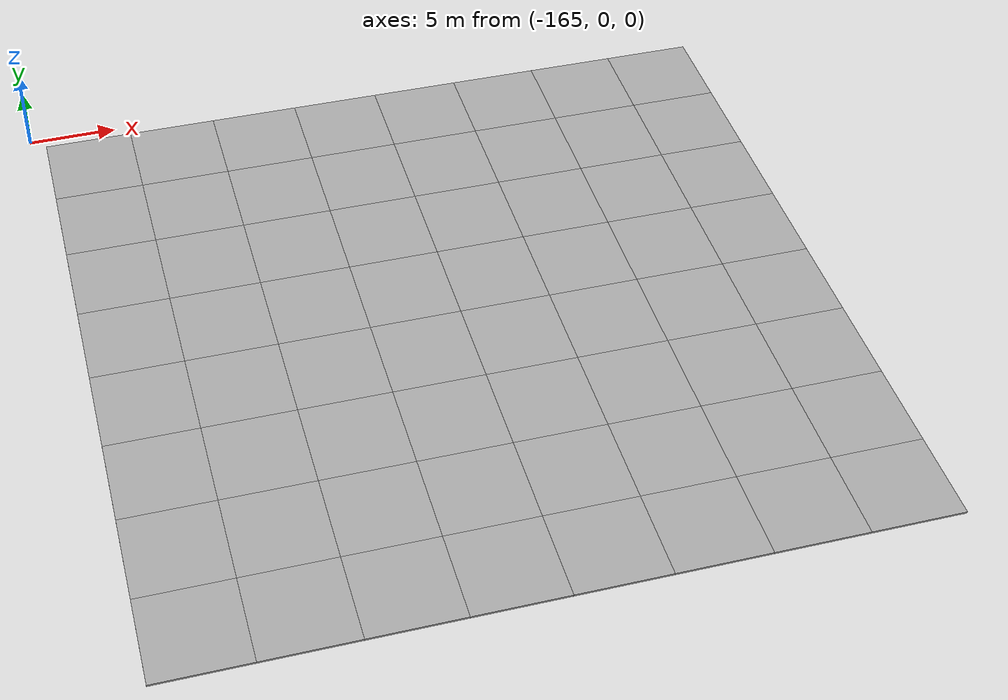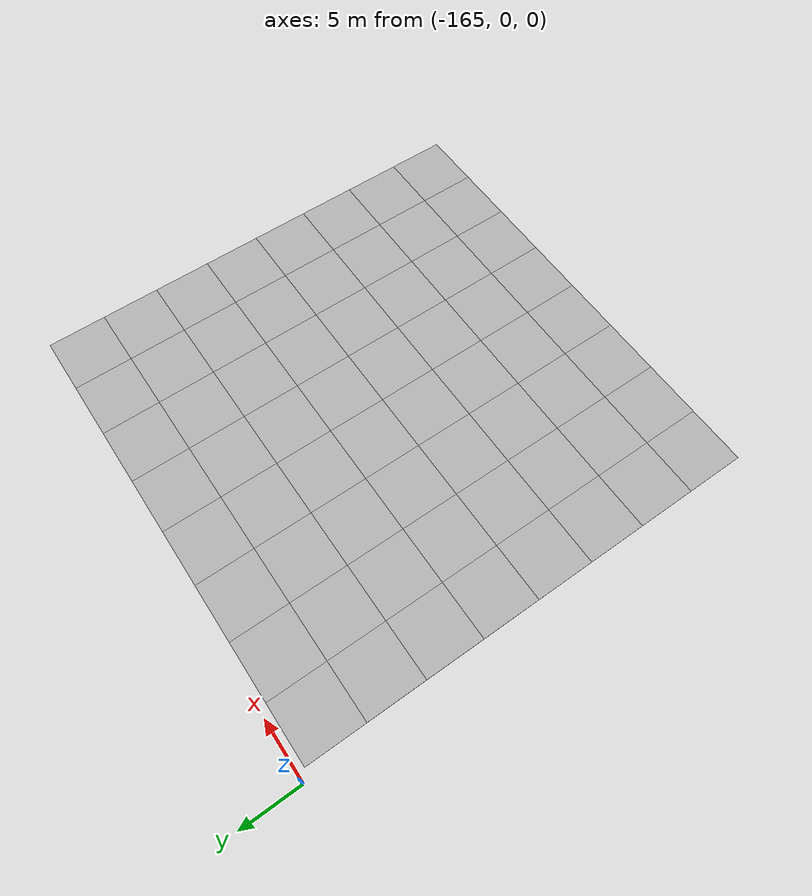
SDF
<sdf version="1.7">
 <world name="default">
  <model name="mud_plane_80x80_4">
   <model name="mud_plane_40x40_1">
    <model name="mud_plane_20x20">
     <model name="mud_plane">
      <static>1</static>
      <link name="link">
       <collision name="collision"><geometry><box><size>10 10 0.1</size></box></geometry></collision>
       <visual name="visual_1">
        <pose>-2.5 2.5 -0.05 0 -0 0</pose>
        <cast_shadows>0</cast_shadows>
        <geometry><box><size>5 5 0.1</size></box></geometry>
        <material>
         <script>
          <uri>model://mud_plane/materials/scripts</uri>
          <uri>model://mud_plane/materials/textures</uri>
          <name>vrc/mud</name>
         </script>
        </material>
       </visual>
       <visual name="visual_2">
        <pose>2.5 2.5 -0.05 0 -0 0</pose>
        <cast_shadows>0</cast_shadows>
        <geometry><box><size>5 5 0.1</size></box></geometry>
        <material>
         <script>
          <uri>model://mud_plane/materials/scripts</uri>
          <uri>model://mud_plane/materials/textures</uri>
          <name>vrc/mud</name>
         </script>
        </material>
       </visual>
       <visual name="visual_3">
        <pose>2.5 -2.5 -0.05 0 -0 0</pose>
        <cast_shadows>0</cast_shadows>
        <geometry><box><size>5 5 0.1</size></box></geometry>
        <material>
         <script>
          <uri>model://mud_plane/materials/scripts</uri>
          <uri>model://mud_plane/materials/textures</uri>
          <name>vrc/mud</name>
         </script>
        </material>
       </visual>
       <visual name="visual_4">
        <pose>-2.5 -2.5 -0.05 0 -0 0</pose>
        <cast_shadows>0</cast_shadows>
        <geometry><box><size>5 5 0.1</size></box></geometry>
        <material>
         <script>
          <uri>model://mud_plane/materials/scripts</uri>
          <uri>model://mud_plane/materials/textures</uri>
          <name>vrc/mud</name>
         </script>
        </material>
       </visual>
      </link>
      <pose>-4.99986 -4.99991 0 0 -0 0</pose>
     </model>
     <model name="mud_plane_0">
      <static>1</static>
      <link name="link">
       <collision name="collision"><geometry><box><size>10 10 0.1</size></box></geometry></collision>
       <visual name="visual_1">
        <pose>-2.5 2.5 -0.05 0 -0 0</pose>
        <cast_shadows>0</cast_shadows>
        <geometry><box><size>5 5 0.1</size></box></geometry>
        <material>
         <script>
          <uri>model://mud_plane/materials/scripts</uri>
          <uri>model://mud_plane/materials/textures</uri>
          <name>vrc/mud</name>
         </script>
        </material>
       </visual>
       <visual name="visual_2">
        <pose>2.5 2.5 -0.05 0 -0 0</pose>
        <cast_shadows>0</cast_shadows>
        <geometry><box><size>5 5 0.1</size></box></geometry>
        <material>
         <script>
          <uri>model://mud_plane/materials/scripts</uri>
          <uri>model://mud_plane/materials/textures</uri>
          <name>vrc/mud</name>
         </script>
        </material>
       </visual>
       <visual name="visual_3">
        <pose>2.5 -2.5 -0.05 0 -0 0</pose>
        <cast_shadows>0</cast_shadows>
        <geometry><box><size>5 5 0.1</size></box></geometry>
        <material>
         <script>
          <uri>model://mud_plane/materials/scripts</uri>
          <uri>model://mud_plane/materials/textures</uri>
          <name>vrc/mud</name>
         </script>
        </material>
       </visual>
       <visual name="visual_4">
        <pose>-2.5 -2.5 -0.05 0 -0 0</pose>
        <cast_shadows>0</cast_shadows>
        <geometry><box><size>5 5 0.1</size></box></geometry>
        <material>
         <script>
          <uri>model://mud_plane/materials/scripts</uri>
          <uri>model://mud_plane/materials/textures</uri>
          <name>vrc/mud</name>
         </script>
        </material>
       </visual>
      </link>
      <pose>-4.99946 4.99954 0 0 -0 0</pose>
     </model>
     <model name="mud_plane_1">
      <static>1</static>
      <link name="link">
       <collision name="collision"><geometry><box><size>10 10 0.1</size></box></geometry></collision>
       <visual name="visual_1">
        <pose>-2.5 2.5 -0.05 0 -0 0</pose>
        <cast_shadows>0</cast_shadows>
        <geometry><box><size>5 5 0.1</size></box></geometry>
        <material>
         <script>
          <uri>model://mud_plane/materials/scripts</uri>
          <uri>model://mud_plane/materials/textures</uri>
          <name>vrc/mud</name>
         </script>
        </material>
       </visual>
       <visual name="visual_2">
        <pose>2.5 2.5 -0.05 0 -0 0</pose>
        <cast_shadows>0</cast_shadows>
        <geometry><box><size>5 5 0.1</size></box></geometry>
        <material>
         <script>
          <uri>model://mud_plane/materials/scripts</uri>
          <uri>model://mud_plane/materials/textures</uri>
          <name>vrc/mud</name>
         </script>
        </material>
       </visual>
       <visual name="visual_3">
        <pose>2.5 -2.5 -0.05 0 -0 0</pose>
        <cast_shadows>0</cast_shadows>
        <geometry><box><size>5 5 0.1</size></box></geometry>
        <material>
         <script>
          <uri>model://mud_plane/materials/scripts</uri>
          <uri>model://mud_plane/materials/textures</uri>
          <name>vrc/mud</name>
         </script>
        </material>
       </visual>
       <visual name="visual_4">
        <pose>-2.5 -2.5 -0.05 0 -0 0</pose>
        <cast_shadows>0</cast_shadows>
        <geometry><box><size>5 5 0.1</size></box></geometry>
        <material>
         <script>
          <uri>model://mud_plane/materials/scripts</uri>
          <uri>model://mud_plane/materials/textures</uri>
          <name>vrc/mud</name>
         </script>
        </material>
       </visual>
      </link>
      <pose>4.99964 -4.99949 0 0 -0 0</pose>
     </model>
     <model name="mud_plane_2">
      <static>1</static>
      <link name="link">
       <collision name="collision"><geometry><box><size>10 10 0.1</size></box></geometry></collision>
       <visual name="visual_1">
        <pose>-2.5 2.5 -0.05 0 -0 0</pose>
        <cast_shadows>0</cast_shadows>
        <geometry><box><size>5 5 0.1</size></box></geometry>
        <material>
         <script>
          <uri>model://mud_plane/materials/scripts</uri>
          <uri>model://mud_plane/materials/textures</uri>
          <name>vrc/mud</name>
         </script>
        </material>
       </visual>
       <visual name="visual_2">
        <pose>2.5 2.5 -0.05 0 -0 0</pose>
        <cast_shadows>0</cast_shadows>
        <geometry><box><size>5 5 0.1</size></box></geometry>
        <material>
         <script>
          <uri>model://mud_plane/materials/scripts</uri>
          <uri>model://mud_plane/materials/textures</uri>
          <name>vrc/mud</name>
         </script>
        </material>
       </visual>
       <visual name="visual_3">
        <pose>2.5 -2.5 -0.05 0 -0 0</pose>
        <cast_shadows>0</cast_shadows>
        <geometry><box><size>5 5 0.1</size></box></geometry>
        <material>
         <script>
          <uri>model://mud_plane/materials/scripts</uri>
          <uri>model://mud_plane/materials/textures</uri>
          <name>vrc/mud</name>
         </script>
        </material>
       </visual>
       <visual name="visual_4">
        <pose>-2.5 -2.5 -0.05 0 -0 0</pose>
        <cast_shadows>0</cast_shadows>
        <geometry><box><size>5 5 0.1</size></box></geometry>
        <material>
         <script>
          <uri>model://mud_plane/materials/scripts</uri>
          <uri>model://mud_plane/materials/textures</uri>
          <name>vrc/mud</name>
         </script>
        </material>
       </visual>
      </link>
      <pose>4.99967 4.99986 0 0 -0 0</pose>
     </model>
     <static>0</static>
     <pose>-9.99895 9.99843 0 0 -0 0</pose>
    </model>
    <model name="mud_plane_20x20_0">
     <model name="mud_plane">
      <static>1</static>
      <link name="link">
       <collision name="collision"><geometry><box><size>10 10 0.1</size></box></geometry></collision>
       <visual name="visual_1">
        <pose>-2.5 2.5 -0.05 0 -0 0</pose>
        <cast_shadows>0</cast_shadows>
        <geometry><box><size>5 5 0.1</size></box></geometry>
        <material>
         <script>
          <uri>model://mud_plane/materials/scripts</uri>
          <uri>model://mud_plane/materials/textures</uri>
          <name>vrc/mud</name>
         </script>
        </material>
       </visual>
       <visual name="visual_2">
        <pose>2.5 2.5 -0.05 0 -0 0</pose>
        <cast_shadows>0</cast_shadows>
        <geometry><box><size>5 5 0.1</size></box></geometry>
        <material>
         <script>
          <uri>model://mud_plane/materials/scripts</uri>
          <uri>model://mud_plane/materials/textures</uri>
          <name>vrc/mud</name>
         </script>
        </material>
       </visual>
       <visual name="visual_3">
        <pose>2.5 -2.5 -0.05 0 -0 0</pose>
        <cast_shadows>0</cast_shadows>
        <geometry><box><size>5 5 0.1</size></box></geometry>
        <material>
         <script>
          <uri>model://mud_plane/materials/scripts</uri>
          <uri>model://mud_plane/materials/textures</uri>
          <name>vrc/mud</name>
         </script>
        </material>
       </visual>
       <visual name="visual_4">
        <pose>-2.5 -2.5 -0.05 0 -0 0</pose>
        <cast_shadows>0</cast_shadows>
        <geometry><box><size>5 5 0.1</size></box></geometry>
        <material>
         <script>
          <uri>model://mud_plane/materials/scripts</uri>
          <uri>model://mud_plane/materials/textures</uri>
          <name>vrc/mud</name>
         </script>
        </material>
       </visual>
      </link>
      <pose>-4.99986 -4.99991 0 0 -0 0</pose>
     </model>
     <model name="mud_plane_0">
      <static>1</static>
      <link name="link">
       <collision name="collision"><geometry><box><size>10 10 0.1</size></box></geometry></collision>
       <visual name="visual_1">
        <pose>-2.5 2.5 -0.05 0 -0 0</pose>
        <cast_shadows>0</cast_shadows>
        <geometry><box><size>5 5 0.1</size></box></geometry>
        <material>
         <script>
          <uri>model://mud_plane/materials/scripts</uri>
          <uri>model://mud_plane/materials/textures</uri>
          <name>vrc/mud</name>
         </script>
        </material>
       </visual>
       <visual name="visual_2">
        <pose>2.5 2.5 -0.05 0 -0 0</pose>
        <cast_shadows>0</cast_shadows>
        <geometry><box><size>5 5 0.1</size></box></geometry>
        <material>
         <script>
          <uri>model://mud_plane/materials/scripts</uri>
          <uri>model://mud_plane/materials/textures</uri>
          <name>vrc/mud</name>
         </script>
        </material>
       </visual>
       <visual name="visual_3">
        <pose>2.5 -2.5 -0.05 0 -0 0</pose>
        <cast_shadows>0</cast_shadows>
        <geometry><box><size>5 5 0.1</size></box></geometry>
        <material>
         <script>
          <uri>model://mud_plane/materials/scripts</uri>
          <uri>model://mud_plane/materials/textures</uri>
          <name>vrc/mud</name>
         </script>
        </material>
       </visual>
       <visual name="visual_4">
        <pose>-2.5 -2.5 -0.05 0 -0 0</pose>
        <cast_shadows>0</cast_shadows>
        <geometry><box><size>5 5 0.1</size></box></geometry>
        <material>
         <script>
          <uri>model://mud_plane/materials/scripts</uri>
          <uri>model://mud_plane/materials/textures</uri>
          <name>vrc/mud</name>
         </script>
        </material>
       </visual>
      </link>
      <pose>-4.99946 4.99954 0 0 -0 0</pose>
     </model>
     <model name="mud_plane_1">
      <static>1</static>
      <link name="link">
       <collision name="collision"><geometry><box><size>10 10 0.1</size></box></geometry></collision>
       <visual name="visual_1">
        <pose>-2.5 2.5 -0.05 0 -0 0</pose>
        <cast_shadows>0</cast_shadows>
        <geometry><box><size>5 5 0.1</size></box></geometry>
        <material>
         <script>
          <uri>model://mud_plane/materials/scripts</uri>
          <uri>model://mud_plane/materials/textures</uri>
          <name>vrc/mud</name>
         </script>
        </material>
       </visual>
       <visual name="visual_2">
        <pose>2.5 2.5 -0.05 0 -0 0</pose>
        <cast_shadows>0</cast_shadows>
        <geometry><box><size>5 5 0.1</size></box></geometry>
        <material>
         <script>
          <uri>model://mud_plane/materials/scripts</uri>
          <uri>model://mud_plane/materials/textures</uri>
          <name>vrc/mud</name>
         </script>
        </material>
       </visual>
       <visual name="visual_3">
        <pose>2.5 -2.5 -0.05 0 -0 0</pose>
        <cast_shadows>0</cast_shadows>
        <geometry><box><size>5 5 0.1</size></box></geometry>
        <material>
         <script>
          <uri>model://mud_plane/materials/scripts</uri>
          <uri>model://mud_plane/materials/textures</uri>
          <name>vrc/mud</name>
         </script>
        </material>
       </visual>
       <visual name="visual_4">
        <pose>-2.5 -2.5 -0.05 0 -0 0</pose>
        <cast_shadows>0</cast_shadows>
        <geometry><box><size>5 5 0.1</size></box></geometry>
        <material>
         <script>
          <uri>model://mud_plane/materials/scripts</uri>
          <uri>model://mud_plane/materials/textures</uri>
          <name>vrc/mud</name>
         </script>
        </material>
       </visual>
      </link>
      <pose>4.99964 -4.99949 0 0 -0 0</pose>
     </model>
     <model name="mud_plane_2">
      <static>1</static>
      <link name="link">
       <collision name="collision"><geometry><box><size>10 10 0.1</size></box></geometry></collision>
       <visual name="visual_1">
        <pose>-2.5 2.5 -0.05 0 -0 0</pose>
        <cast_shadows>0</cast_shadows>
        <geometry><box><size>5 5 0.1</size></box></geometry>
        <material>
         <script>
          <uri>model://mud_plane/materials/scripts</uri>
          <uri>model://mud_plane/materials/textures</uri>
          <name>vrc/mud</name>
         </script>
        </material>
       </visual>
       <visual name="visual_2">
        <pose>2.5 2.5 -0.05 0 -0 0</pose>
        <cast_shadows>0</cast_shadows>
        <geometry><box><size>5 5 0.1</size></box></geometry>
        <material>
         <script>
          <uri>model://mud_plane/materials/scripts</uri>
          <uri>model://mud_plane/materials/textures</uri>
          <name>vrc/mud</name>
         </script>
        </material>
       </visual>
       <visual name="visual_3">
        <pose>2.5 -2.5 -0.05 0 -0 0</pose>
        <cast_shadows>0</cast_shadows>
        <geometry><box><size>5 5 0.1</size></box></geometry>
        <material>
         <script>
          <uri>model://mud_plane/materials/scripts</uri>
          <uri>model://mud_plane/materials/textures</uri>
          <name>vrc/mud</name>
         </script>
        </material>
       </visual>
       <visual name="visual_4">
        <pose>-2.5 -2.5 -0.05 0 -0 0</pose>
        <cast_shadows>0</cast_shadows>
        <geometry><box><size>5 5 0.1</size></box></geometry>
        <material>
         <script>
          <uri>model://mud_plane/materials/scripts</uri>
          <uri>model://mud_plane/materials/textures</uri>
          <name>vrc/mud</name>
         </script>
        </material>
       </visual>
      </link>
      <pose>4.99967 4.99986 0 0 -0 0</pose>
     </model>
     <static>0</static>
     <pose>9.99933 9.9997 0 0 -0 0</pose>
    </model>
    <model name="mud_plane_20x20_1">
     <model name="mud_plane">
      <static>1</static>
      <link name="link">
       <collision name="collision"><geometry><box><size>10 10 0.1</size></box></geometry></collision>
       <visual name="visual_1">
        <pose>-2.5 2.5 -0.05 0 -0 0</pose>
        <cast_shadows>0</cast_shadows>
        <geometry><box><size>5 5 0.1</size></box></geometry>
        <material>
         <script>
          <uri>model://mud_plane/materials/scripts</uri>
          <uri>model://mud_plane/materials/textures</uri>
          <name>vrc/mud</name>
         </script>
        </material>
       </visual>
       <visual name="visual_2">
        <pose>2.5 2.5 -0.05 0 -0 0</pose>
        <cast_shadows>0</cast_shadows>
        <geometry><box><size>5 5 0.1</size></box></geometry>
        <material>
         <script>
          <uri>model://mud_plane/materials/scripts</uri>
          <uri>model://mud_plane/materials/textures</uri>
          <name>vrc/mud</name>
         </script>
        </material>
       </visual>
       <visual name="visual_3">
        <pose>2.5 -2.5 -0.05 0 -0 0</pose>
        <cast_shadows>0</cast_shadows>
        <geometry><box><size>5 5 0.1</size></box></geometry>
        <material>
         <script>
          <uri>model://mud_plane/materials/scripts</uri>
          <uri>model://mud_plane/materials/textures</uri>
          <name>vrc/mud</name>
         </script>
        </material>
       </visual>
       <visual name="visual_4">
        <pose>-2.5 -2.5 -0.05 0 -0 0</pose>
        <cast_shadows>0</cast_shadows>
        <geometry><box><size>5 5 0.1</size></box></geometry>
        <material>
         <script>
          <uri>model://mud_plane/materials/scripts</uri>
          <uri>model://mud_plane/materials/textures</uri>
          <name>vrc/mud</name>
         </script>
        </material>
       </visual>
      </link>
      <pose>-4.99986 -4.99991 0 0 -0 0</pose>
     </model>
     <model name="mud_plane_0">
      <static>1</static>
      <link name="link">
       <collision name="collision"><geometry><box><size>10 10 0.1</size></box></geometry></collision>
       <visual name="visual_1">
        <pose>-2.5 2.5 -0.05 0 -0 0</pose>
        <cast_shadows>0</cast_shadows>
        <geometry><box><size>5 5 0.1</size></box></geometry>
        <material>
         <script>
          <uri>model://mud_plane/materials/scripts</uri>
          <uri>model://mud_plane/materials/textures</uri>
          <name>vrc/mud</name>
         </script>
        </material>
       </visual>
       <visual name="visual_2">
        <pose>2.5 2.5 -0.05 0 -0 0</pose>
        <cast_shadows>0</cast_shadows>
        <geometry><box><size>5 5 0.1</size></box></geometry>
        <material>
         <script>
          <uri>model://mud_plane/materials/scripts</uri>
          <uri>model://mud_plane/materials/textures</uri>
          <name>vrc/mud</name>
         </script>
        </material>
       </visual>
       <visual name="visual_3">
        <pose>2.5 -2.5 -0.05 0 -0 0</pose>
        <cast_shadows>0</cast_shadows>
        <geometry><box><size>5 5 0.1</size></box></geometry>
        <material>
         <script>
          <uri>model://mud_plane/materials/scripts</uri>
          <uri>model://mud_plane/materials/textures</uri>
          <name>vrc/mud</name>
         </script>
        </material>
       </visual>
       <visual name="visual_4">
        <pose>-2.5 -2.5 -0.05 0 -0 0</pose>
        <cast_shadows>0</cast_shadows>
        <geometry><box><size>5 5 0.1</size></box></geometry>
        <material>
         <script>
          <uri>model://mud_plane/materials/scripts</uri>
          <uri>model://mud_plane/materials/textures</uri>
          <name>vrc/mud</name>
         </script>
        </material>
       </visual>
      </link>
      <pose>-4.99946 4.99954 0 0 -0 0</pose>
     </model>
     <model name="mud_plane_1">
      <static>1</static>
      <link name="link">
       <collision name="collision"><geometry><box><size>10 10 0.1</size></box></geometry></collision>
       <visual name="visual_1">
        <pose>-2.5 2.5 -0.05 0 -0 0</pose>
        <cast_shadows>0</cast_shadows>
        <geometry><box><size>5 5 0.1</size></box></geometry>
        <material>
         <script>
          <uri>model://mud_plane/materials/scripts</uri>
          <uri>model://mud_plane/materials/textures</uri>
          <name>vrc/mud</name>
         </script>
        </material>
       </visual>
       <visual name="visual_2">
        <pose>2.5 2.5 -0.05 0 -0 0</pose>
        <cast_shadows>0</cast_shadows>
        <geometry><box><size>5 5 0.1</size></box></geometry>
        <material>
         <script>
          <uri>model://mud_plane/materials/scripts</uri>
          <uri>model://mud_plane/materials/textures</uri>
          <name>vrc/mud</name>
         </script>
        </material>
       </visual>
       <visual name="visual_3">
        <pose>2.5 -2.5 -0.05 0 -0 0</pose>
        <cast_shadows>0</cast_shadows>
        <geometry><box><size>5 5 0.1</size></box></geometry>
        <material>
         <script>
          <uri>model://mud_plane/materials/scripts</uri>
          <uri>model://mud_plane/materials/textures</uri>
          <name>vrc/mud</name>
         </script>
        </material>
       </visual>
       <visual name="visual_4">
        <pose>-2.5 -2.5 -0.05 0 -0 0</pose>
        <cast_shadows>0</cast_shadows>
        <geometry><box><size>5 5 0.1</size></box></geometry>
        <material>
         <script>
          <uri>model://mud_plane/materials/scripts</uri>
          <uri>model://mud_plane/materials/textures</uri>
          <name>vrc/mud</name>
         </script>
        </material>
       </visual>
      </link>
      <pose>4.99964 -4.99949 0 0 -0 0</pose>
     </model>
     <model name="mud_plane_2">
      <static>1</static>
      <link name="link">
       <collision name="collision"><geometry><box><size>10 10 0.1</size></box></geometry></collision>
       <visual name="visual_1">
        <pose>-2.5 2.5 -0.05 0 -0 0</pose>
        <cast_shadows>0</cast_shadows>
        <geometry><box><size>5 5 0.1</size></box></geometry>
        <material>
         <script>
          <uri>model://mud_plane/materials/scripts</uri>
          <uri>model://mud_plane/materials/textures</uri>
          <name>vrc/mud</name>
         </script>
        </material>
       </visual>
       <visual name="visual_2">
        <pose>2.5 2.5 -0.05 0 -0 0</pose>
        <cast_shadows>0</cast_shadows>
        <geometry><box><size>5 5 0.1</size></box></geometry>
        <material>
         <script>
          <uri>model://mud_plane/materials/scripts</uri>
          <uri>model://mud_plane/materials/textures</uri>
          <name>vrc/mud</name>
         </script>
        </material>
       </visual>
       <visual name="visual_3">
        <pose>2.5 -2.5 -0.05 0 -0 0</pose>
        <cast_shadows>0</cast_shadows>
        <geometry><box><size>5 5 0.1</size></box></geometry>
        <material>
         <script>
          <uri>model://mud_plane/materials/scripts</uri>
          <uri>model://mud_plane/materials/textures</uri>
          <name>vrc/mud</name>
         </script>
        </material>
       </visual>
       <visual name="visual_4">
        <pose>-2.5 -2.5 -0.05 0 -0 0</pose>
        <cast_shadows>0</cast_shadows>
        <geometry><box><size>5 5 0.1</size></box></geometry>
        <material>
         <script>
          <uri>model://mud_plane/materials/scripts</uri>
          <uri>model://mud_plane/materials/textures</uri>
          <name>vrc/mud</name>
         </script>
        </material>
       </visual>
      </link>
      <pose>4.99967 4.99986 0 0 -0 0</pose>
     </model>
     <static>0</static>
     <pose>9.9993 -9.99877 0 0 -0 0</pose>
    </model>
    <model name="mud_plane_20x20_2">
     <model name="mud_plane">
      <static>1</static>
      <link name="link">
       <collision name="collision"><geometry><box><size>10 10 0.1</size></box></geometry></collision>
       <visual name="visual_1">
        <pose>-2.5 2.5 -0.05 0 -0 0</pose>
        <cast_shadows>0</cast_shadows>
        <geometry><box><size>5 5 0.1</size></box></geometry>
        <material>
         <script>
          <uri>model://mud_plane/materials/scripts</uri>
          <uri>model://mud_plane/materials/textures</uri>
          <name>vrc/mud</name>
         </script>
        </material>
       </visual>
       <visual name="visual_2">
        <pose>2.5 2.5 -0.05 0 -0 0</pose>
        <cast_shadows>0</cast_shadows>
        <geometry><box><size>5 5 0.1</size></box></geometry>
        <material>
         <script>
          <uri>model://mud_plane/materials/scripts</uri>
          <uri>model://mud_plane/materials/textures</uri>
          <name>vrc/mud</name>
         </script>
        </material>
       </visual>
       <visual name="visual_3">
        <pose>2.5 -2.5 -0.05 0 -0 0</pose>
        <cast_shadows>0</cast_shadows>
        <geometry><box><size>5 5 0.1</size></box></geometry>
        <material>
         <script>
          <uri>model://mud_plane/materials/scripts</uri>
          <uri>model://mud_plane/materials/textures</uri>
          <name>vrc/mud</name>
         </script>
        </material>
       </visual>
       <visual name="visual_4">
        <pose>-2.5 -2.5 -0.05 0 -0 0</pose>
        <cast_shadows>0</cast_shadows>
        <geometry><box><size>5 5 0.1</size></box></geometry>
        <material>
         <script>
          <uri>model://mud_plane/materials/scripts</uri>
          <uri>model://mud_plane/materials/textures</uri>
          <name>vrc/mud</name>
         </script>
        </material>
       </visual>
      </link>
      <pose>-4.99986 -4.99991 0 0 -0 0</pose>
     </model>
     <model name="mud_plane_0">
      <static>1</static>
      <link name="link">
       <collision name="collision"><geometry><box><size>10 10 0.1</size></box></geometry></collision>
       <visual name="visual_1">
        <pose>-2.5 2.5 -0.05 0 -0 0</pose>
        <cast_shadows>0</cast_shadows>
        <geometry><box><size>5 5 0.1</size></box></geometry>
        <material>
         <script>
          <uri>model://mud_plane/materials/scripts</uri>
          <uri>model://mud_plane/materials/textures</uri>
          <name>vrc/mud</name>
         </script>
        </material>
       </visual>
       <visual name="visual_2">
        <pose>2.5 2.5 -0.05 0 -0 0</pose>
        <cast_shadows>0</cast_shadows>
        <geometry><box><size>5 5 0.1</size></box></geometry>
        <material>
         <script>
          <uri>model://mud_plane/materials/scripts</uri>
          <uri>model://mud_plane/materials/textures</uri>
          <name>vrc/mud</name>
         </script>
        </material>
       </visual>
       <visual name="visual_3">
        <pose>2.5 -2.5 -0.05 0 -0 0</pose>
        <cast_shadows>0</cast_shadows>
        <geometry><box><size>5 5 0.1</size></box></geometry>
        <material>
         <script>
          <uri>model://mud_plane/materials/scripts</uri>
          <uri>model://mud_plane/materials/textures</uri>
          <name>vrc/mud</name>
         </script>
        </material>
       </visual>
       <visual name="visual_4">
        <pose>-2.5 -2.5 -0.05 0 -0 0</pose>
        <cast_shadows>0</cast_shadows>
        <geometry><box><size>5 5 0.1</size></box></geometry>
        <material>
         <script>
          <uri>model://mud_plane/materials/scripts</uri>
          <uri>model://mud_plane/materials/textures</uri>
          <name>vrc/mud</name>
         </script>
        </material>
       </visual>
      </link>
      <pose>-4.99946 4.99954 0 0 -0 0</pose>
     </model>
     <model name="mud_plane_1">
      <static>1</static>
      <link name="link">
       <collision name="collision"><geometry><box><size>10 10 0.1</size></box></geometry></collision>
       <visual name="visual_1">
        <pose>-2.5 2.5 -0.05 0 -0 0</pose>
        <cast_shadows>0</cast_shadows>
        <geometry><box><size>5 5 0.1</size></box></geometry>
        <material>
         <script>
          <uri>model://mud_plane/materials/scripts</uri>
          <uri>model://mud_plane/materials/textures</uri>
          <name>vrc/mud</name>
         </script>
        </material>
       </visual>
       <visual name="visual_2">
        <pose>2.5 2.5 -0.05 0 -0 0</pose>
        <cast_shadows>0</cast_shadows>
        <geometry><box><size>5 5 0.1</size></box></geometry>
        <material>
         <script>
          <uri>model://mud_plane/materials/scripts</uri>
          <uri>model://mud_plane/materials/textures</uri>
          <name>vrc/mud</name>
         </script>
        </material>
       </visual>
       <visual name="visual_3">
        <pose>2.5 -2.5 -0.05 0 -0 0</pose>
        <cast_shadows>0</cast_shadows>
        <geometry><box><size>5 5 0.1</size></box></geometry>
        <material>
         <script>
          <uri>model://mud_plane/materials/scripts</uri>
          <uri>model://mud_plane/materials/textures</uri>
          <name>vrc/mud</name>
         </script>
        </material>
       </visual>
       <visual name="visual_4">
        <pose>-2.5 -2.5 -0.05 0 -0 0</pose>
        <cast_shadows>0</cast_shadows>
        <geometry><box><size>5 5 0.1</size></box></geometry>
        <material>
         <script>
          <uri>model://mud_plane/materials/scripts</uri>
          <uri>model://mud_plane/materials/textures</uri>
          <name>vrc/mud</name>
         </script>
        </material>
       </visual>
      </link>
      <pose>4.99964 -4.99949 0 0 -0 0</pose>
     </model>
     <model name="mud_plane_2">
      <static>1</static>
      <link name="link">
       <collision name="collision"><geometry><box><size>10 10 0.1</size></box></geometry></collision>
       <visual name="visual_1">
        <pose>-2.5 2.5 -0.05 0 -0 0</pose>
        <cast_shadows>0</cast_shadows>
        <geometry><box><size>5 5 0.1</size></box></geometry>
        <material>
         <script>
          <uri>model://mud_plane/materials/scripts</uri>
          <uri>model://mud_plane/materials/textures</uri>
          <name>vrc/mud</name>
         </script>
        </material>
       </visual>
       <visual name="visual_2">
        <pose>2.5 2.5 -0.05 0 -0 0</pose>
        <cast_shadows>0</cast_shadows>
        <geometry><box><size>5 5 0.1</size></box></geometry>
        <material>
         <script>
          <uri>model://mud_plane/materials/scripts</uri>
          <uri>model://mud_plane/materials/textures</uri>
          <name>vrc/mud</name>
         </script>
        </material>
       </visual>
       <visual name="visual_3">
        <pose>2.5 -2.5 -0.05 0 -0 0</pose>
        <cast_shadows>0</cast_shadows>
        <geometry><box><size>5 5 0.1</size></box></geometry>
        <material>
         <script>
          <uri>model://mud_plane/materials/scripts</uri>
          <uri>model://mud_plane/materials/textures</uri>
          <name>vrc/mud</name>
         </script>
        </material>
       </visual>
       <visual name="visual_4">
        <pose>-2.5 -2.5 -0.05 0 -0 0</pose>
        <cast_shadows>0</cast_shadows>
        <geometry><box><size>5 5 0.1</size></box></geometry>
        <material>
         <script>
          <uri>model://mud_plane/materials/scripts</uri>
          <uri>model://mud_plane/materials/textures</uri>
          <name>vrc/mud</name>
         </script>
        </material>
       </visual>
      </link>
      <pose>4.99967 4.99986 0 0 -0 0</pose>
     </model>
     <static>0</static>
     <pose>-9.99969 -9.99935 0 0 -0 0</pose>
    </model>
    <static>0</static>
    <pose>-19.9982 19.9977 0 0 -0 0</pose>
   </model>
   <static>0</static>
   <pose>-124.144 -40.594 0 0 -0 0</pose>
  </model>
 </world>
</sdf>
